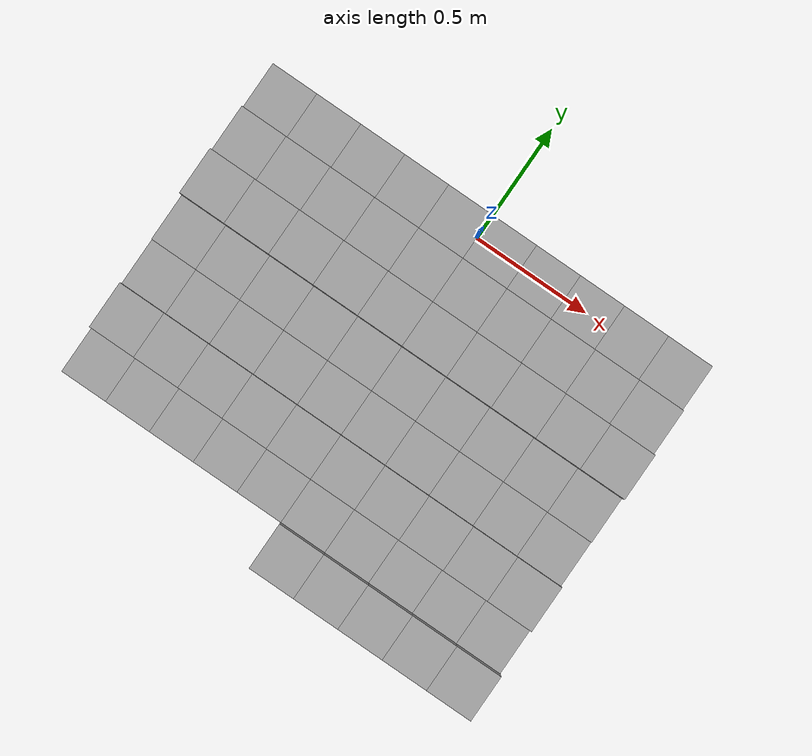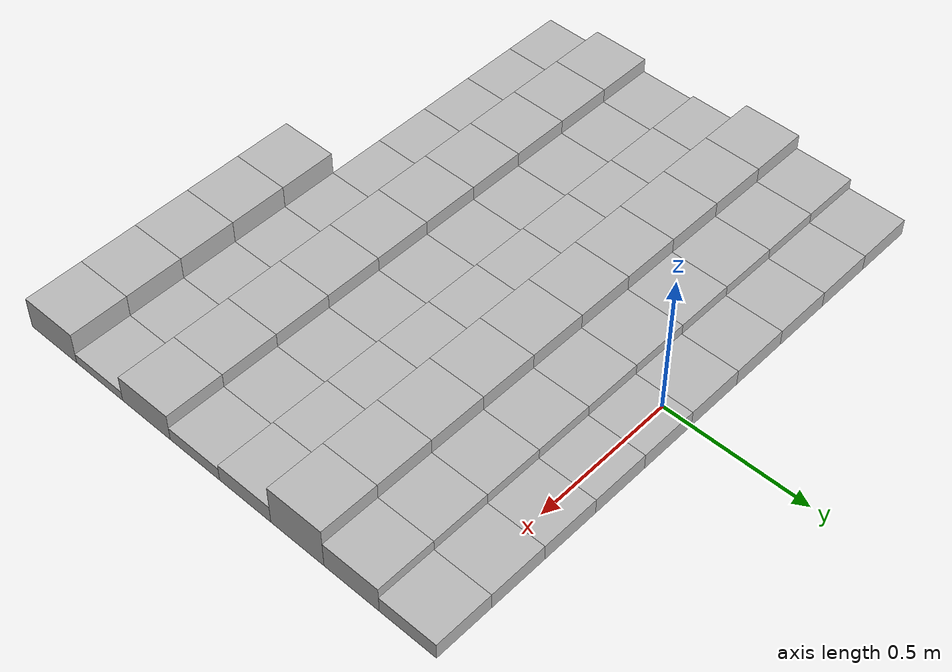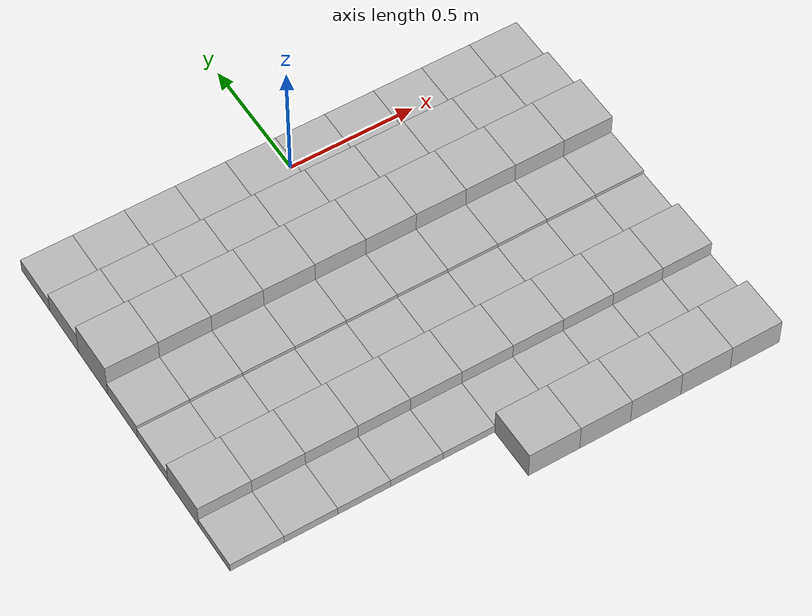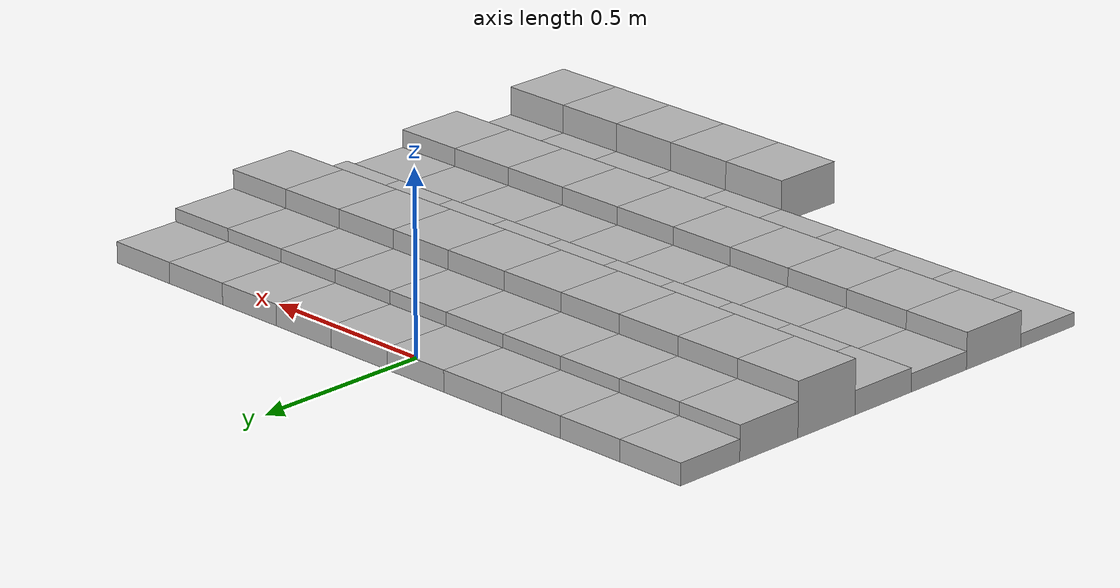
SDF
<sdf version="1.6">
 <model name="Terrain">
  <static>true</static>
  <link name="box_0_0">
   <pose>-0.9 0.0 0.0291271861864 0 0 0</pose>
   <inertial>
    <mass>1.0</mass>
    <inertia><ixx>0.0</ixx><ixy>0.0</ixy><ixz>0.0</ixz><iyy>0.0</iyy><iyz>0.0</iyz><izz>0.0</izz></inertia>
   </inertial>
   <collision name="collision"><geometry><box><size>0.2 0.2 0.0582543723728</size></box></geometry></collision>
   <visual name="visual"><geometry><box><size>0.2 0.2 0.0582543723728</size></box></geometry></visual>
  </link>
  <link name="box_0_1">
   <pose>-0.7 0.0 0.0291271861864 0 0 0</pose>
   <inertial>
    <mass>1.0</mass>
    <inertia><ixx>0.0</ixx><ixy>0.0</ixy><ixz>0.0</ixz><iyy>0.0</iyy><iyz>0.0</iyz><izz>0.0</izz></inertia>
   </inertial>
   <collision name="collision"><geometry><box><size>0.2 0.2 0.0582543723728</size></box></geometry></collision>
   <visual name="visual"><geometry><box><size>0.2 0.2 0.0582543723728</size></box></geometry></visual>
  </link>
  <link name="box_0_2">
   <pose>-0.5 0.0 0.0291271861864 0 0 0</pose>
   <inertial>
    <mass>1.0</mass>
    <inertia><ixx>0.0</ixx><ixy>0.0</ixy><ixz>0.0</ixz><iyy>0.0</iyy><iyz>0.0</iyz><izz>0.0</izz></inertia>
   </inertial>
   <collision name="collision"><geometry><box><size>0.2 0.2 0.0582543723728</size></box></geometry></collision>
   <visual name="visual"><geometry><box><size>0.2 0.2 0.0582543723728</size></box></geometry></visual>
  </link>
  <link name="box_0_3">
   <pose>-0.3 0.0 0.0291271861864 0 0 0</pose>
   <inertial>
    <mass>1.0</mass>
    <inertia><ixx>0.0</ixx><ixy>0.0</ixy><ixz>0.0</ixz><iyy>0.0</iyy><iyz>0.0</iyz><izz>0.0</izz></inertia>
   </inertial>
   <collision name="collision"><geometry><box><size>0.2 0.2 0.0582543723728</size></box></geometry></collision>
   <visual name="visual"><geometry><box><size>0.2 0.2 0.0582543723728</size></box></geometry></visual>
  </link>
  <link name="box_0_4">
   <pose>-0.1 0.0 0.0291271861864 0 0 0</pose>
   <inertial>
    <mass>1.0</mass>
    <inertia><ixx>0.0</ixx><ixy>0.0</ixy><ixz>0.0</ixz><iyy>0.0</iyy><iyz>0.0</iyz><izz>0.0</izz></inertia>
   </inertial>
   <collision name="collision"><geometry><box><size>0.2 0.2 0.0582543723728</size></box></geometry></collision>
   <visual name="visual"><geometry><box><size>0.2 0.2 0.0582543723728</size></box></geometry></visual>
  </link>
  <link name="box_0_5">
   <pose>0.1 0.0 0.0291271861864 0 0 0</pose>
   <inertial>
    <mass>1.0</mass>
    <inertia><ixx>0.0</ixx><ixy>0.0</ixy><ixz>0.0</ixz><iyy>0.0</iyy><iyz>0.0</iyz><izz>0.0</izz></inertia>
   </inertial>
   <collision name="collision"><geometry><box><size>0.2 0.2 0.0582543723728</size></box></geometry></collision>
   <visual name="visual"><geometry><box><size>0.2 0.2 0.0582543723728</size></box></geometry></visual>
  </link>
  <link name="box_0_6">
   <pose>0.3 0.0 0.0291271861864 0 0 0</pose>
   <inertial>
    <mass>1.0</mass>
    <inertia><ixx>0.0</ixx><ixy>0.0</ixy><ixz>0.0</ixz><iyy>0.0</iyy><iyz>0.0</iyz><izz>0.0</izz></inertia>
   </inertial>
   <collision name="collision"><geometry><box><size>0.2 0.2 0.0582543723728</size></box></geometry></collision>
   <visual name="visual"><geometry><box><size>0.2 0.2 0.0582543723728</size></box></geometry></visual>
  </link>
  <link name="box_0_7">
   <pose>0.5 0.0 0.0291271861864 0 0 0</pose>
   <inertial>
    <mass>1.0</mass>
    <inertia><ixx>0.0</ixx><ixy>0.0</ixy><ixz>0.0</ixz><iyy>0.0</iyy><iyz>0.0</iyz><izz>0.0</izz></inertia>
   </inertial>
   <collision name="collision"><geometry><box><size>0.2 0.2 0.0582543723728</size></box></geometry></collision>
   <visual name="visual"><geometry><box><size>0.2 0.2 0.0582543723728</size></box></geometry></visual>
  </link>
  <link name="box_0_8">
   <pose>0.7 0.0 0.0291271861864 0 0 0</pose>
   <inertial>
    <mass>1.0</mass>
    <inertia><ixx>0.0</ixx><ixy>0.0</ixy><ixz>0.0</ixz><iyy>0.0</iyy><iyz>0.0</iyz><izz>0.0</izz></inertia>
   </inertial>
   <collision name="collision"><geometry><box><size>0.2 0.2 0.0582543723728</size></box></geometry></collision>
   <visual name="visual"><geometry><box><size>0.2 0.2 0.0582543723728</size></box></geometry></visual>
  </link>
  <link name="box_0_9">
   <pose>0.9 0.0 0.0291271861864 0 0 0</pose>
   <inertial>
    <mass>1.0</mass>
    <inertia><ixx>0.0</ixx><ixy>0.0</ixy><ixz>0.0</ixz><iyy>0.0</iyy><iyz>0.0</iyz><izz>0.0</izz></inertia>
   </inertial>
   <collision name="collision"><geometry><box><size>0.2 0.2 0.0582543723728</size></box></geometry></collision>
   <visual name="visual"><geometry><box><size>0.2 0.2 0.0582543723728</size></box></geometry></visual>
  </link>
  <link name="box_1_0">
   <pose>-0.9 -0.2 0.0472886952334 0 0 0</pose>
   <inertial>
    <mass>1.0</mass>
    <inertia><ixx>0.0</ixx><ixy>0.0</ixy><ixz>0.0</ixz><iyy>0.0</iyy><iyz>0.0</iyz><izz>0.0</izz></inertia>
   </inertial>
   <collision name="collision"><geometry><box><size>0.2 0.2 0.0945773904668</size></box></geometry></collision>
   <visual name="visual"><geometry><box><size>0.2 0.2 0.0945773904668</size></box></geometry></visual>
  </link>
  <link name="box_1_1">
   <pose>-0.7 -0.2 0.0472886952334 0 0 0</pose>
   <inertial>
    <mass>1.0</mass>
    <inertia><ixx>0.0</ixx><ixy>0.0</ixy><ixz>0.0</ixz><iyy>0.0</iyy><iyz>0.0</iyz><izz>0.0</izz></inertia>
   </inertial>
   <collision name="collision"><geometry><box><size>0.2 0.2 0.0945773904668</size></box></geometry></collision>
   <visual name="visual"><geometry><box><size>0.2 0.2 0.0945773904668</size></box></geometry></visual>
  </link>
  <link name="box_1_2">
   <pose>-0.5 -0.2 0.0472886952334 0 0 0</pose>
   <inertial>
    <mass>1.0</mass>
    <inertia><ixx>0.0</ixx><ixy>0.0</ixy><ixz>0.0</ixz><iyy>0.0</iyy><iyz>0.0</iyz><izz>0.0</izz></inertia>
   </inertial>
   <collision name="collision"><geometry><box><size>0.2 0.2 0.0945773904668</size></box></geometry></collision>
   <visual name="visual"><geometry><box><size>0.2 0.2 0.0945773904668</size></box></geometry></visual>
  </link>
  <link name="box_1_3">
   <pose>-0.3 -0.2 0.0472886952334 0 0 0</pose>
   <inertial>
    <mass>1.0</mass>
    <inertia><ixx>0.0</ixx><ixy>0.0</ixy><ixz>0.0</ixz><iyy>0.0</iyy><iyz>0.0</iyz><izz>0.0</izz></inertia>
   </inertial>
   <collision name="collision"><geometry><box><size>0.2 0.2 0.0945773904668</size></box></geometry></collision>
   <visual name="visual"><geometry><box><size>0.2 0.2 0.0945773904668</size></box></geometry></visual>
  </link>
  <link name="box_1_4">
   <pose>-0.1 -0.2 0.0472886952334 0 0 0</pose>
   <inertial>
    <mass>1.0</mass>
    <inertia><ixx>0.0</ixx><ixy>0.0</ixy><ixz>0.0</ixz><iyy>0.0</iyy><iyz>0.0</iyz><izz>0.0</izz></inertia>
   </inertial>
   <collision name="collision"><geometry><box><size>0.2 0.2 0.0945773904668</size></box></geometry></collision>
   <visual name="visual"><geometry><box><size>0.2 0.2 0.0945773904668</size></box></geometry></visual>
  </link>
  <link name="box_1_5">
   <pose>0.1 -0.2 0.0472886952334 0 0 0</pose>
   <inertial>
    <mass>1.0</mass>
    <inertia><ixx>0.0</ixx><ixy>0.0</ixy><ixz>0.0</ixz><iyy>0.0</iyy><iyz>0.0</iyz><izz>0.0</izz></inertia>
   </inertial>
   <collision name="collision"><geometry><box><size>0.2 0.2 0.0945773904668</size></box></geometry></collision>
   <visual name="visual"><geometry><box><size>0.2 0.2 0.0945773904668</size></box></geometry></visual>
  </link>
  <link name="box_1_6">
   <pose>0.3 -0.2 0.0472886952334 0 0 0</pose>
   <inertial>
    <mass>1.0</mass>
    <inertia><ixx>0.0</ixx><ixy>0.0</ixy><ixz>0.0</ixz><iyy>0.0</iyy><iyz>0.0</iyz><izz>0.0</izz></inertia>
   </inertial>
   <collision name="collision"><geometry><box><size>0.2 0.2 0.0945773904668</size></box></geometry></collision>
   <visual name="visual"><geometry><box><size>0.2 0.2 0.0945773904668</size></box></geometry></visual>
  </link>
  <link name="box_1_7">
   <pose>0.5 -0.2 0.0472886952334 0 0 0</pose>
   <inertial>
    <mass>1.0</mass>
    <inertia><ixx>0.0</ixx><ixy>0.0</ixy><ixz>0.0</ixz><iyy>0.0</iyy><iyz>0.0</iyz><izz>0.0</izz></inertia>
   </inertial>
   <collision name="collision"><geometry><box><size>0.2 0.2 0.0945773904668</size></box></geometry></collision>
   <visual name="visual"><geometry><box><size>0.2 0.2 0.0945773904668</size></box></geometry></visual>
  </link>
  <link name="box_1_8">
   <pose>0.7 -0.2 0.0472886952334 0 0 0</pose>
   <inertial>
    <mass>1.0</mass>
    <inertia><ixx>0.0</ixx><ixy>0.0</ixy><ixz>0.0</ixz><iyy>0.0</iyy><iyz>0.0</iyz><izz>0.0</izz></inertia>
   </inertial>
   <collision name="collision"><geometry><box><size>0.2 0.2 0.0945773904668</size></box></geometry></collision>
   <visual name="visual"><geometry><box><size>0.2 0.2 0.0945773904668</size></box></geometry></visual>
  </link>
  <link name="box_1_9">
   <pose>0.9 -0.2 0.0472886952334 0 0 0</pose>
   <inertial>
    <mass>1.0</mass>
    <inertia><ixx>0.0</ixx><ixy>0.0</ixy><ixz>0.0</ixz><iyy>0.0</iyy><iyz>0.0</iyz><izz>0.0</izz></inertia>
   </inertial>
   <collision name="collision"><geometry><box><size>0.2 0.2 0.0945773904668</size></box></geometry></collision>
   <visual name="visual"><geometry><box><size>0.2 0.2 0.0945773904668</size></box></geometry></visual>
  </link>
  <link name="box_2_0">
   <pose>-0.9 -0.4 0.0734856317987 0 0 0</pose>
   <inertial>
    <mass>1.0</mass>
    <inertia><ixx>0.0</ixx><ixy>0.0</ixy><ixz>0.0</ixz><iyy>0.0</iyy><iyz>0.0</iyz><izz>0.0</izz></inertia>
   </inertial>
   <collision name="collision"><geometry><box><size>0.2 0.2 0.146971263597</size></box></geometry></collision>
   <visual name="visual"><geometry><box><size>0.2 0.2 0.146971263597</size></box></geometry></visual>
  </link>
  <link name="box_2_1">
   <pose>-0.7 -0.4 0.0734856317987 0 0 0</pose>
   <inertial>
    <mass>1.0</mass>
    <inertia><ixx>0.0</ixx><ixy>0.0</ixy><ixz>0.0</ixz><iyy>0.0</iyy><iyz>0.0</iyz><izz>0.0</izz></inertia>
   </inertial>
   <collision name="collision"><geometry><box><size>0.2 0.2 0.146971263597</size></box></geometry></collision>
   <visual name="visual"><geometry><box><size>0.2 0.2 0.146971263597</size></box></geometry></visual>
  </link>
  <link name="box_2_2">
   <pose>-0.5 -0.4 0.0734856317987 0 0 0</pose>
   <inertial>
    <mass>1.0</mass>
    <inertia><ixx>0.0</ixx><ixy>0.0</ixy><ixz>0.0</ixz><iyy>0.0</iyy><iyz>0.0</iyz><izz>0.0</izz></inertia>
   </inertial>
   <collision name="collision"><geometry><box><size>0.2 0.2 0.146971263597</size></box></geometry></collision>
   <visual name="visual"><geometry><box><size>0.2 0.2 0.146971263597</size></box></geometry></visual>
  </link>
  <link name="box_2_3">
   <pose>-0.3 -0.4 0.0734856317987 0 0 0</pose>
   <inertial>
    <mass>1.0</mass>
    <inertia><ixx>0.0</ixx><ixy>0.0</ixy><ixz>0.0</ixz><iyy>0.0</iyy><iyz>0.0</iyz><izz>0.0</izz></inertia>
   </inertial>
   <collision name="collision"><geometry><box><size>0.2 0.2 0.146971263597</size></box></geometry></collision>
   <visual name="visual"><geometry><box><size>0.2 0.2 0.146971263597</size></box></geometry></visual>
  </link>
  <link name="box_2_4">
   <pose>-0.1 -0.4 0.0734856317987 0 0 0</pose>
   <inertial>
    <mass>1.0</mass>
    <inertia><ixx>0.0</ixx><ixy>0.0</ixy><ixz>0.0</ixz><iyy>0.0</iyy><iyz>0.0</iyz><izz>0.0</izz></inertia>
   </inertial>
   <collision name="collision"><geometry><box><size>0.2 0.2 0.146971263597</size></box></geometry></collision>
   <visual name="visual"><geometry><box><size>0.2 0.2 0.146971263597</size></box></geometry></visual>
  </link>
  <link name="box_2_5">
   <pose>0.1 -0.4 0.0734856317987 0 0 0</pose>
   <inertial>
    <mass>1.0</mass>
    <inertia><ixx>0.0</ixx><ixy>0.0</ixy><ixz>0.0</ixz><iyy>0.0</iyy><iyz>0.0</iyz><izz>0.0</izz></inertia>
   </inertial>
   <collision name="collision"><geometry><box><size>0.2 0.2 0.146971263597</size></box></geometry></collision>
   <visual name="visual"><geometry><box><size>0.2 0.2 0.146971263597</size></box></geometry></visual>
  </link>
  <link name="box_2_6">
   <pose>0.3 -0.4 0.0734856317987 0 0 0</pose>
   <inertial>
    <mass>1.0</mass>
    <inertia><ixx>0.0</ixx><ixy>0.0</ixy><ixz>0.0</ixz><iyy>0.0</iyy><iyz>0.0</iyz><izz>0.0</izz></inertia>
   </inertial>
   <collision name="collision"><geometry><box><size>0.2 0.2 0.146971263597</size></box></geometry></collision>
   <visual name="visual"><geometry><box><size>0.2 0.2 0.146971263597</size></box></geometry></visual>
  </link>
  <link name="box_2_7">
   <pose>0.5 -0.4 0.0734856317987 0 0 0</pose>
   <inertial>
    <mass>1.0</mass>
    <inertia><ixx>0.0</ixx><ixy>0.0</ixy><ixz>0.0</ixz><iyy>0.0</iyy><iyz>0.0</iyz><izz>0.0</izz></inertia>
   </inertial>
   <collision name="collision"><geometry><box><size>0.2 0.2 0.146971263597</size></box></geometry></collision>
   <visual name="visual"><geometry><box><size>0.2 0.2 0.146971263597</size></box></geometry></visual>
  </link>
  <link name="box_2_8">
   <pose>0.7 -0.4 0.0734856317987 0 0 0</pose>
   <inertial>
    <mass>1.0</mass>
    <inertia><ixx>0.0</ixx><ixy>0.0</ixy><ixz>0.0</ixz><iyy>0.0</iyy><iyz>0.0</iyz><izz>0.0</izz></inertia>
   </inertial>
   <collision name="collision"><geometry><box><size>0.2 0.2 0.146971263597</size></box></geometry></collision>
   <visual name="visual"><geometry><box><size>0.2 0.2 0.146971263597</size></box></geometry></visual>
  </link>
  <link name="box_2_9">
   <pose>0.9 -0.4 0.0734856317987 0 0 0</pose>
   <inertial>
    <mass>1.0</mass>
    <inertia><ixx>0.0</ixx><ixy>0.0</ixy><ixz>0.0</ixz><iyy>0.0</iyy><iyz>0.0</iyz><izz>0.0</izz></inertia>
   </inertial>
   <collision name="collision"><geometry><box><size>0.2 0.2 0.146971263597</size></box></geometry></collision>
   <visual name="visual"><geometry><box><size>0.2 0.2 0.146971263597</size></box></geometry></visual>
  </link>
  <link name="box_3_0">
   <pose>-0.9 -0.6 0.0318402218857 0 0 0</pose>
   <inertial>
    <mass>1.0</mass>
    <inertia><ixx>0.0</ixx><ixy>0.0</ixy><ixz>0.0</ixz><iyy>0.0</iyy><iyz>0.0</iyz><izz>0.0</izz></inertia>
   </inertial>
   <collision name="collision"><geometry><box><size>0.2 0.2 0.0636804437714</size></box></geometry></collision>
   <visual name="visual"><geometry><box><size>0.2 0.2 0.0636804437714</size></box></geometry></visual>
  </link>
  <link name="box_3_1">
   <pose>-0.7 -0.6 0.0318402218857 0 0 0</pose>
   <inertial>
    <mass>1.0</mass>
    <inertia><ixx>0.0</ixx><ixy>0.0</ixy><ixz>0.0</ixz><iyy>0.0</iyy><iyz>0.0</iyz><izz>0.0</izz></inertia>
   </inertial>
   <collision name="collision"><geometry><box><size>0.2 0.2 0.0636804437714</size></box></geometry></collision>
   <visual name="visual"><geometry><box><size>0.2 0.2 0.0636804437714</size></box></geometry></visual>
  </link>
  <link name="box_3_2">
   <pose>-0.5 -0.6 0.0318402218857 0 0 0</pose>
   <inertial>
    <mass>1.0</mass>
    <inertia><ixx>0.0</ixx><ixy>0.0</ixy><ixz>0.0</ixz><iyy>0.0</iyy><iyz>0.0</iyz><izz>0.0</izz></inertia>
   </inertial>
   <collision name="collision"><geometry><box><size>0.2 0.2 0.0636804437714</size></box></geometry></collision>
   <visual name="visual"><geometry><box><size>0.2 0.2 0.0636804437714</size></box></geometry></visual>
  </link>
  <link name="box_3_3">
   <pose>-0.3 -0.6 0.0318402218857 0 0 0</pose>
   <inertial>
    <mass>1.0</mass>
    <inertia><ixx>0.0</ixx><ixy>0.0</ixy><ixz>0.0</ixz><iyy>0.0</iyy><iyz>0.0</iyz><izz>0.0</izz></inertia>
   </inertial>
   <collision name="collision"><geometry><box><size>0.2 0.2 0.0636804437714</size></box></geometry></collision>
   <visual name="visual"><geometry><box><size>0.2 0.2 0.0636804437714</size></box></geometry></visual>
  </link>
  <link name="box_3_4">
   <pose>-0.1 -0.6 0.0318402218857 0 0 0</pose>
   <inertial>
    <mass>1.0</mass>
    <inertia><ixx>0.0</ixx><ixy>0.0</ixy><ixz>0.0</ixz><iyy>0.0</iyy><iyz>0.0</iyz><izz>0.0</izz></inertia>
   </inertial>
   <collision name="collision"><geometry><box><size>0.2 0.2 0.0636804437714</size></box></geometry></collision>
   <visual name="visual"><geometry><box><size>0.2 0.2 0.0636804437714</size></box></geometry></visual>
  </link>
  <link name="box_3_5">
   <pose>0.1 -0.6 0.0318402218857 0 0 0</pose>
   <inertial>
    <mass>1.0</mass>
    <inertia><ixx>0.0</ixx><ixy>0.0</ixy><ixz>0.0</ixz><iyy>0.0</iyy><iyz>0.0</iyz><izz>0.0</izz></inertia>
   </inertial>
   <collision name="collision"><geometry><box><size>0.2 0.2 0.0636804437714</size></box></geometry></collision>
   <visual name="visual"><geometry><box><size>0.2 0.2 0.0636804437714</size></box></geometry></visual>
  </link>
  <link name="box_3_6">
   <pose>0.3 -0.6 0.0318402218857 0 0 0</pose>
   <inertial>
    <mass>1.0</mass>
    <inertia><ixx>0.0</ixx><ixy>0.0</ixy><ixz>0.0</ixz><iyy>0.0</iyy><iyz>0.0</iyz><izz>0.0</izz></inertia>
   </inertial>
   <collision name="collision"><geometry><box><size>0.2 0.2 0.0636804437714</size></box></geometry></collision>
   <visual name="visual"><geometry><box><size>0.2 0.2 0.0636804437714</size></box></geometry></visual>
  </link>
  <link name="box_3_7">
   <pose>0.5 -0.6 0.0318402218857 0 0 0</pose>
   <inertial>
    <mass>1.0</mass>
    <inertia><ixx>0.0</ixx><ixy>0.0</ixy><ixz>0.0</ixz><iyy>0.0</iyy><iyz>0.0</iyz><izz>0.0</izz></inertia>
   </inertial>
   <collision name="collision"><geometry><box><size>0.2 0.2 0.0636804437714</size></box></geometry></collision>
   <visual name="visual"><geometry><box><size>0.2 0.2 0.0636804437714</size></box></geometry></visual>
  </link>
  <link name="box_3_8">
   <pose>0.7 -0.6 0.0318402218857 0 0 0</pose>
   <inertial>
    <mass>1.0</mass>
    <inertia><ixx>0.0</ixx><ixy>0.0</ixy><ixz>0.0</ixz><iyy>0.0</iyy><iyz>0.0</iyz><izz>0.0</izz></inertia>
   </inertial>
   <collision name="collision"><geometry><box><size>0.2 0.2 0.0636804437714</size></box></geometry></collision>
   <visual name="visual"><geometry><box><size>0.2 0.2 0.0636804437714</size></box></geometry></visual>
  </link>
  <link name="box_3_9">
   <pose>0.9 -0.6 0.0318402218857 0 0 0</pose>
   <inertial>
    <mass>1.0</mass>
    <inertia><ixx>0.0</ixx><ixy>0.0</ixy><ixz>0.0</ixz><iyy>0.0</iyy><iyz>0.0</iyz><izz>0.0</izz></inertia>
   </inertial>
   <collision name="collision"><geometry><box><size>0.2 0.2 0.0636804437714</size></box></geometry></collision>
   <visual name="visual"><geometry><box><size>0.2 0.2 0.0636804437714</size></box></geometry></visual>
  </link>
  <link name="box_4_0">
   <pose>-0.9 -0.8 0.0242651245484 0 0 0</pose>
   <inertial>
    <mass>1.0</mass>
    <inertia><ixx>0.0</ixx><ixy>0.0</ixy><ixz>0.0</ixz><iyy>0.0</iyy><iyz>0.0</iyz><izz>0.0</izz></inertia>
   </inertial>
   <collision name="collision"><geometry><box><size>0.2 0.2 0.0485302490968</size></box></geometry></collision>
   <visual name="visual"><geometry><box><size>0.2 0.2 0.0485302490968</size></box></geometry></visual>
  </link>
  <link name="box_4_1">
   <pose>-0.7 -0.8 0.0242651245484 0 0 0</pose>
   <inertial>
    <mass>1.0</mass>
    <inertia><ixx>0.0</ixx><ixy>0.0</ixy><ixz>0.0</ixz><iyy>0.0</iyy><iyz>0.0</iyz><izz>0.0</izz></inertia>
   </inertial>
   <collision name="collision"><geometry><box><size>0.2 0.2 0.0485302490968</size></box></geometry></collision>
   <visual name="visual"><geometry><box><size>0.2 0.2 0.0485302490968</size></box></geometry></visual>
  </link>
  <link name="box_4_2">
   <pose>-0.5 -0.8 0.0242651245484 0 0 0</pose>
   <inertial>
    <mass>1.0</mass>
    <inertia><ixx>0.0</ixx><ixy>0.0</ixy><ixz>0.0</ixz><iyy>0.0</iyy><iyz>0.0</iyz><izz>0.0</izz></inertia>
   </inertial>
   <collision name="collision"><geometry><box><size>0.2 0.2 0.0485302490968</size></box></geometry></collision>
   <visual name="visual"><geometry><box><size>0.2 0.2 0.0485302490968</size></box></geometry></visual>
  </link>
  <link name="box_4_3">
   <pose>-0.3 -0.8 0.0242651245484 0 0 0</pose>
   <inertial>
    <mass>1.0</mass>
    <inertia><ixx>0.0</ixx><ixy>0.0</ixy><ixz>0.0</ixz><iyy>0.0</iyy><iyz>0.0</iyz><izz>0.0</izz></inertia>
   </inertial>
   <collision name="collision"><geometry><box><size>0.2 0.2 0.0485302490968</size></box></geometry></collision>
   <visual name="visual"><geometry><box><size>0.2 0.2 0.0485302490968</size></box></geometry></visual>
  </link>
  <link name="box_4_4">
   <pose>-0.1 -0.8 0.0242651245484 0 0 0</pose>
   <inertial>
    <mass>1.0</mass>
    <inertia><ixx>0.0</ixx><ixy>0.0</ixy><ixz>0.0</ixz><iyy>0.0</iyy><iyz>0.0</iyz><izz>0.0</izz></inertia>
   </inertial>
   <collision name="collision"><geometry><box><size>0.2 0.2 0.0485302490968</size></box></geometry></collision>
   <visual name="visual"><geometry><box><size>0.2 0.2 0.0485302490968</size></box></geometry></visual>
  </link>
  <link name="box_4_5">
   <pose>0.1 -0.8 0.0242651245484 0 0 0</pose>
   <inertial>
    <mass>1.0</mass>
    <inertia><ixx>0.0</ixx><ixy>0.0</ixy><ixz>0.0</ixz><iyy>0.0</iyy><iyz>0.0</iyz><izz>0.0</izz></inertia>
   </inertial>
   <collision name="collision"><geometry><box><size>0.2 0.2 0.0485302490968</size></box></geometry></collision>
   <visual name="visual"><geometry><box><size>0.2 0.2 0.0485302490968</size></box></geometry></visual>
  </link>
  <link name="box_4_6">
   <pose>0.3 -0.8 0.0242651245484 0 0 0</pose>
   <inertial>
    <mass>1.0</mass>
    <inertia><ixx>0.0</ixx><ixy>0.0</ixy><ixz>0.0</ixz><iyy>0.0</iyy><iyz>0.0</iyz><izz>0.0</izz></inertia>
   </inertial>
   <collision name="collision"><geometry><box><size>0.2 0.2 0.0485302490968</size></box></geometry></collision>
   <visual name="visual"><geometry><box><size>0.2 0.2 0.0485302490968</size></box></geometry></visual>
  </link>
  <link name="box_4_7">
   <pose>0.5 -0.8 0.0242651245484 0 0 0</pose>
   <inertial>
    <mass>1.0</mass>
    <inertia><ixx>0.0</ixx><ixy>0.0</ixy><ixz>0.0</ixz><iyy>0.0</iyy><iyz>0.0</iyz><izz>0.0</izz></inertia>
   </inertial>
   <collision name="collision"><geometry><box><size>0.2 0.2 0.0485302490968</size></box></geometry></collision>
   <visual name="visual"><geometry><box><size>0.2 0.2 0.0485302490968</size></box></geometry></visual>
  </link>
  <link name="box_4_8">
   <pose>0.7 -0.8 0.0242651245484 0 0 0</pose>
   <inertial>
    <mass>1.0</mass>
    <inertia><ixx>0.0</ixx><ixy>0.0</ixy><ixz>0.0</ixz><iyy>0.0</iyy><iyz>0.0</iyz><izz>0.0</izz></inertia>
   </inertial>
   <collision name="collision"><geometry><box><size>0.2 0.2 0.0485302490968</size></box></geometry></collision>
   <visual name="visual"><geometry><box><size>0.2 0.2 0.0485302490968</size></box></geometry></visual>
  </link>
  <link name="box_4_9">
   <pose>0.9 -0.8 0.0242651245484 0 0 0</pose>
   <inertial>
    <mass>1.0</mass>
    <inertia><ixx>0.0</ixx><ixy>0.0</ixy><ixz>0.0</ixz><iyy>0.0</iyy><iyz>0.0</iyz><izz>0.0</izz></inertia>
   </inertial>
   <collision name="collision"><geometry><box><size>0.2 0.2 0.0485302490968</size></box></geometry></collision>
   <visual name="visual"><geometry><box><size>0.2 0.2 0.0485302490968</size></box></geometry></visual>
  </link>
  <link name="box_5_0">
   <pose>-0.9 -1.0 0.0493567014706 0 0 0</pose>
   <inertial>
    <mass>1.0</mass>
    <inertia><ixx>0.0</ixx><ixy>0.0</ixy><ixz>0.0</ixz><iyy>0.0</iyy><iyz>0.0</iyz><izz>0.0</izz></inertia>
   </inertial>
   <collision name="collision"><geometry><box><size>0.2 0.2 0.0987134029413</size></box></geometry></collision>
   <visual name="visual"><geometry><box><size>0.2 0.2 0.0987134029413</size></box></geometry></visual>
  </link>
  <link name="box_5_1">
   <pose>-0.7 -1.0 0.0493567014706 0 0 0</pose>
   <inertial>
    <mass>1.0</mass>
    <inertia><ixx>0.0</ixx><ixy>0.0</ixy><ixz>0.0</ixz><iyy>0.0</iyy><iyz>0.0</iyz><izz>0.0</izz></inertia>
   </inertial>
   <collision name="collision"><geometry><box><size>0.2 0.2 0.0987134029413</size></box></geometry></collision>
   <visual name="visual"><geometry><box><size>0.2 0.2 0.0987134029413</size></box></geometry></visual>
  </link>
  <link name="box_5_2">
   <pose>-0.5 -1.0 0.0493567014706 0 0 0</pose>
   <inertial>
    <mass>1.0</mass>
    <inertia><ixx>0.0</ixx><ixy>0.0</ixy><ixz>0.0</ixz><iyy>0.0</iyy><iyz>0.0</iyz><izz>0.0</izz></inertia>
   </inertial>
   <collision name="collision"><geometry><box><size>0.2 0.2 0.0987134029413</size></box></geometry></collision>
   <visual name="visual"><geometry><box><size>0.2 0.2 0.0987134029413</size></box></geometry></visual>
  </link>
  <link name="box_5_3">
   <pose>-0.3 -1.0 0.0493567014706 0 0 0</pose>
   <inertial>
    <mass>1.0</mass>
    <inertia><ixx>0.0</ixx><ixy>0.0</ixy><ixz>0.0</ixz><iyy>0.0</iyy><iyz>0.0</iyz><izz>0.0</izz></inertia>
   </inertial>
   <collision name="collision"><geometry><box><size>0.2 0.2 0.0987134029413</size></box></geometry></collision>
   <visual name="visual"><geometry><box><size>0.2 0.2 0.0987134029413</size></box></geometry></visual>
  </link>
  <link name="box_5_4">
   <pose>-0.1 -1.0 0.0493567014706 0 0 0</pose>
   <inertial>
    <mass>1.0</mass>
    <inertia><ixx>0.0</ixx><ixy>0.0</ixy><ixz>0.0</ixz><iyy>0.0</iyy><iyz>0.0</iyz><izz>0.0</izz></inertia>
   </inertial>
   <collision name="collision"><geometry><box><size>0.2 0.2 0.0987134029413</size></box></geometry></collision>
   <visual name="visual"><geometry><box><size>0.2 0.2 0.0987134029413</size></box></geometry></visual>
  </link>
  <link name="box_5_5">
   <pose>0.1 -1.0 0.0493567014706 0 0 0</pose>
   <inertial>
    <mass>1.0</mass>
    <inertia><ixx>0.0</ixx><ixy>0.0</ixy><ixz>0.0</ixz><iyy>0.0</iyy><iyz>0.0</iyz><izz>0.0</izz></inertia>
   </inertial>
   <collision name="collision"><geometry><box><size>0.2 0.2 0.0987134029413</size></box></geometry></collision>
   <visual name="visual"><geometry><box><size>0.2 0.2 0.0987134029413</size></box></geometry></visual>
  </link>
  <link name="box_5_6">
   <pose>0.3 -1.0 0.0493567014706 0 0 0</pose>
   <inertial>
    <mass>1.0</mass>
    <inertia><ixx>0.0</ixx><ixy>0.0</ixy><ixz>0.0</ixz><iyy>0.0</iyy><iyz>0.0</iyz><izz>0.0</izz></inertia>
   </inertial>
   <collision name="collision"><geometry><box><size>0.2 0.2 0.0987134029413</size></box></geometry></collision>
   <visual name="visual"><geometry><box><size>0.2 0.2 0.0987134029413</size></box></geometry></visual>
  </link>
  <link name="box_5_7">
   <pose>0.5 -1.0 0.0493567014706 0 0 0</pose>
   <inertial>
    <mass>1.0</mass>
    <inertia><ixx>0.0</ixx><ixy>0.0</ixy><ixz>0.0</ixz><iyy>0.0</iyy><iyz>0.0</iyz><izz>0.0</izz></inertia>
   </inertial>
   <collision name="collision"><geometry><box><size>0.2 0.2 0.0987134029413</size></box></geometry></collision>
   <visual name="visual"><geometry><box><size>0.2 0.2 0.0987134029413</size></box></geometry></visual>
  </link>
  <link name="box_5_8">
   <pose>0.7 -1.0 0.0493567014706 0 0 0</pose>
   <inertial>
    <mass>1.0</mass>
    <inertia><ixx>0.0</ixx><ixy>0.0</ixy><ixz>0.0</ixz><iyy>0.0</iyy><iyz>0.0</iyz><izz>0.0</izz></inertia>
   </inertial>
   <collision name="collision"><geometry><box><size>0.2 0.2 0.0987134029413</size></box></geometry></collision>
   <visual name="visual"><geometry><box><size>0.2 0.2 0.0987134029413</size></box></geometry></visual>
  </link>
  <link name="box_5_9">
   <pose>0.9 -1.0 0.0493567014706 0 0 0</pose>
   <inertial>
    <mass>1.0</mass>
    <inertia><ixx>0.0</ixx><ixy>0.0</ixy><ixz>0.0</ixz><iyy>0.0</iyy><iyz>0.0</iyz><izz>0.0</izz></inertia>
   </inertial>
   <collision name="collision"><geometry><box><size>0.2 0.2 0.0987134029413</size></box></geometry></collision>
   <visual name="visual"><geometry><box><size>0.2 0.2 0.0987134029413</size></box></geometry></visual>
  </link>
  <link name="box_6_0">
   <pose>-0.9 -1.2 0.0182154784128 0 0 0</pose>
   <inertial>
    <mass>1.0</mass>
    <inertia><ixx>0.0</ixx><ixy>0.0</ixy><ixz>0.0</ixz><iyy>0.0</iyy><iyz>0.0</iyz><izz>0.0</izz></inertia>
   </inertial>
   <collision name="collision"><geometry><box><size>0.2 0.2 0.0364309568256</size></box></geometry></collision>
   <visual name="visual"><geometry><box><size>0.2 0.2 0.0364309568256</size></box></geometry></visual>
  </link>
  <link name="box_6_1">
   <pose>-0.7 -1.2 0.0182154784128 0 0 0</pose>
   <inertial>
    <mass>1.0</mass>
    <inertia><ixx>0.0</ixx><ixy>0.0</ixy><ixz>0.0</ixz><iyy>0.0</iyy><iyz>0.0</iyz><izz>0.0</izz></inertia>
   </inertial>
   <collision name="collision"><geometry><box><size>0.2 0.2 0.0364309568256</size></box></geometry></collision>
   <visual name="visual"><geometry><box><size>0.2 0.2 0.0364309568256</size></box></geometry></visual>
  </link>
  <link name="box_6_2">
   <pose>-0.5 -1.2 0.0182154784128 0 0 0</pose>
   <inertial>
    <mass>1.0</mass>
    <inertia><ixx>0.0</ixx><ixy>0.0</ixy><ixz>0.0</ixz><iyy>0.0</iyy><iyz>0.0</iyz><izz>0.0</izz></inertia>
   </inertial>
   <collision name="collision"><geometry><box><size>0.2 0.2 0.0364309568256</size></box></geometry></collision>
   <visual name="visual"><geometry><box><size>0.2 0.2 0.0364309568256</size></box></geometry></visual>
  </link>
  <link name="box_6_3">
   <pose>-0.3 -1.2 0.0182154784128 0 0 0</pose>
   <inertial>
    <mass>1.0</mass>
    <inertia><ixx>0.0</ixx><ixy>0.0</ixy><ixz>0.0</ixz><iyy>0.0</iyy><iyz>0.0</iyz><izz>0.0</izz></inertia>
   </inertial>
   <collision name="collision"><geometry><box><size>0.2 0.2 0.0364309568256</size></box></geometry></collision>
   <visual name="visual"><geometry><box><size>0.2 0.2 0.0364309568256</size></box></geometry></visual>
  </link>
  <link name="box_6_4">
   <pose>-0.1 -1.2 0.0182154784128 0 0 0</pose>
   <inertial>
    <mass>1.0</mass>
    <inertia><ixx>0.0</ixx><ixy>0.0</ixy><ixz>0.0</ixz><iyy>0.0</iyy><iyz>0.0</iyz><izz>0.0</izz></inertia>
   </inertial>
   <collision name="collision"><geometry><box><size>0.2 0.2 0.0364309568256</size></box></geometry></collision>
   <visual name="visual"><geometry><box><size>0.2 0.2 0.0364309568256</size></box></geometry></visual>
  </link>
  <link name="box_6_5">
   <pose>0.1 -1.2 0.0182154784128 0 0 0</pose>
   <inertial>
    <mass>1.0</mass>
    <inertia><ixx>0.0</ixx><ixy>0.0</ixy><ixz>0.0</ixz><iyy>0.0</iyy><iyz>0.0</iyz><izz>0.0</izz></inertia>
   </inertial>
   <collision name="collision"><geometry><box><size>0.2 0.2 0.0364309568256</size></box></geometry></collision>
   <visual name="visual"><geometry><box><size>0.2 0.2 0.0364309568256</size></box></geometry></visual>
  </link>
  <link name="box_6_6">
   <pose>0.3 -1.2 0.0182154784128 0 0 0</pose>
   <inertial>
    <mass>1.0</mass>
    <inertia><ixx>0.0</ixx><ixy>0.0</ixy><ixz>0.0</ixz><iyy>0.0</iyy><iyz>0.0</iyz><izz>0.0</izz></inertia>
   </inertial>
   <collision name="collision"><geometry><box><size>0.2 0.2 0.0364309568256</size></box></geometry></collision>
   <visual name="visual"><geometry><box><size>0.2 0.2 0.0364309568256</size></box></geometry></visual>
  </link>
  <link name="box_6_7">
   <pose>0.5 -1.2 0.0182154784128 0 0 0</pose>
   <inertial>
    <mass>1.0</mass>
    <inertia><ixx>0.0</ixx><ixy>0.0</ixy><ixz>0.0</ixz><iyy>0.0</iyy><iyz>0.0</iyz><izz>0.0</izz></inertia>
   </inertial>
   <collision name="collision"><geometry><box><size>0.2 0.2 0.0364309568256</size></box></geometry></collision>
   <visual name="visual"><geometry><box><size>0.2 0.2 0.0364309568256</size></box></geometry></visual>
  </link>
  <link name="box_6_8">
   <pose>0.7 -1.2 0.0182154784128 0 0 0</pose>
   <inertial>
    <mass>1.0</mass>
    <inertia><ixx>0.0</ixx><ixy>0.0</ixy><ixz>0.0</ixz><iyy>0.0</iyy><iyz>0.0</iyz><izz>0.0</izz></inertia>
   </inertial>
   <collision name="collision"><geometry><box><size>0.2 0.2 0.0364309568256</size></box></geometry></collision>
   <visual name="visual"><geometry><box><size>0.2 0.2 0.0364309568256</size></box></geometry></visual>
  </link>
  <link name="box_6_9">
   <pose>0.9 -1.2 0.0182154784128 0 0 0</pose>
   <inertial>
    <mass>1.0</mass>
    <inertia><ixx>0.0</ixx><ixy>0.0</ixy><ixz>0.0</ixz><iyy>0.0</iyy><iyz>0.0</iyz><izz>0.0</izz></inertia>
   </inertial>
   <collision name="collision"><geometry><box><size>0.2 0.2 0.0364309568256</size></box></geometry></collision>
   <visual name="visual"><geometry><box><size>0.2 0.2 0.0364309568256</size></box></geometry></visual>
  </link>
  <link name="box_7_5">
   <pose>0.1 -1.4 0.0577819918738 0 0 0</pose>
   <inertial>
    <mass>1.0</mass>
    <inertia><ixx>0.0</ixx><ixy>0.0</ixy><ixz>0.0</ixz><iyy>0.0</iyy><iyz>0.0</iyz><izz>0.0</izz></inertia>
   </inertial>
   <collision name="collision"><geometry><box><size>0.2 0.2 0.115563983748</size></box></geometry></collision>
   <visual name="visual"><geometry><box><size>0.2 0.2 0.115563983748</size></box></geometry></visual>
  </link>
  <link name="box_7_6">
   <pose>0.3 -1.4 0.0577819918738 0 0 0</pose>
   <inertial>
    <mass>1.0</mass>
    <inertia><ixx>0.0</ixx><ixy>0.0</ixy><ixz>0.0</ixz><iyy>0.0</iyy><iyz>0.0</iyz><izz>0.0</izz></inertia>
   </inertial>
   <collision name="collision"><geometry><box><size>0.2 0.2 0.115563983748</size></box></geometry></collision>
   <visual name="visual"><geometry><box><size>0.2 0.2 0.115563983748</size></box></geometry></visual>
  </link>
  <link name="box_7_7">
   <pose>0.5 -1.4 0.0577819918738 0 0 0</pose>
   <inertial>
    <mass>1.0</mass>
    <inertia><ixx>0.0</ixx><ixy>0.0</ixy><ixz>0.0</ixz><iyy>0.0</iyy><iyz>0.0</iyz><izz>0.0</izz></inertia>
   </inertial>
   <collision name="collision"><geometry><box><size>0.2 0.2 0.115563983748</size></box></geometry></collision>
   <visual name="visual"><geometry><box><size>0.2 0.2 0.115563983748</size></box></geometry></visual>
  </link>
  <link name="box_7_8">
   <pose>0.7 -1.4 0.0577819918738 0 0 0</pose>
   <inertial>
    <mass>1.0</mass>
    <inertia><ixx>0.0</ixx><ixy>0.0</ixy><ixz>0.0</ixz><iyy>0.0</iyy><iyz>0.0</iyz><izz>0.0</izz></inertia>
   </inertial>
   <collision name="collision"><geometry><box><size>0.2 0.2 0.115563983748</size></box></geometry></collision>
   <visual name="visual"><geometry><box><size>0.2 0.2 0.115563983748</size></box></geometry></visual>
  </link>
  <link name="box_7_9">
   <pose>0.9 -1.4 0.0577819918738 0 0 0</pose>
   <inertial>
    <mass>1.0</mass>
    <inertia><ixx>0.0</ixx><ixy>0.0</ixy><ixz>0.0</ixz><iyy>0.0</iyy><iyz>0.0</iyz><izz>0.0</izz></inertia>
   </inertial>
   <collision name="collision"><geometry><box><size>0.2 0.2 0.115563983748</size></box></geometry></collision>
   <visual name="visual"><geometry><box><size>0.2 0.2 0.115563983748</size></box></geometry></visual>
  </link>
 </model>
</sdf>
